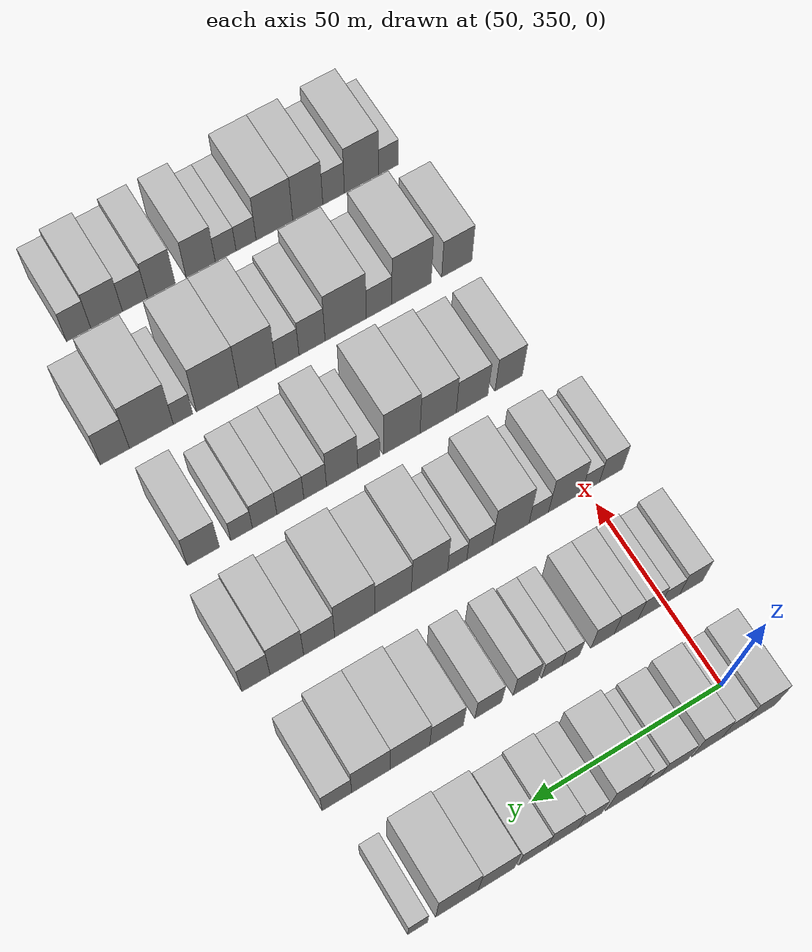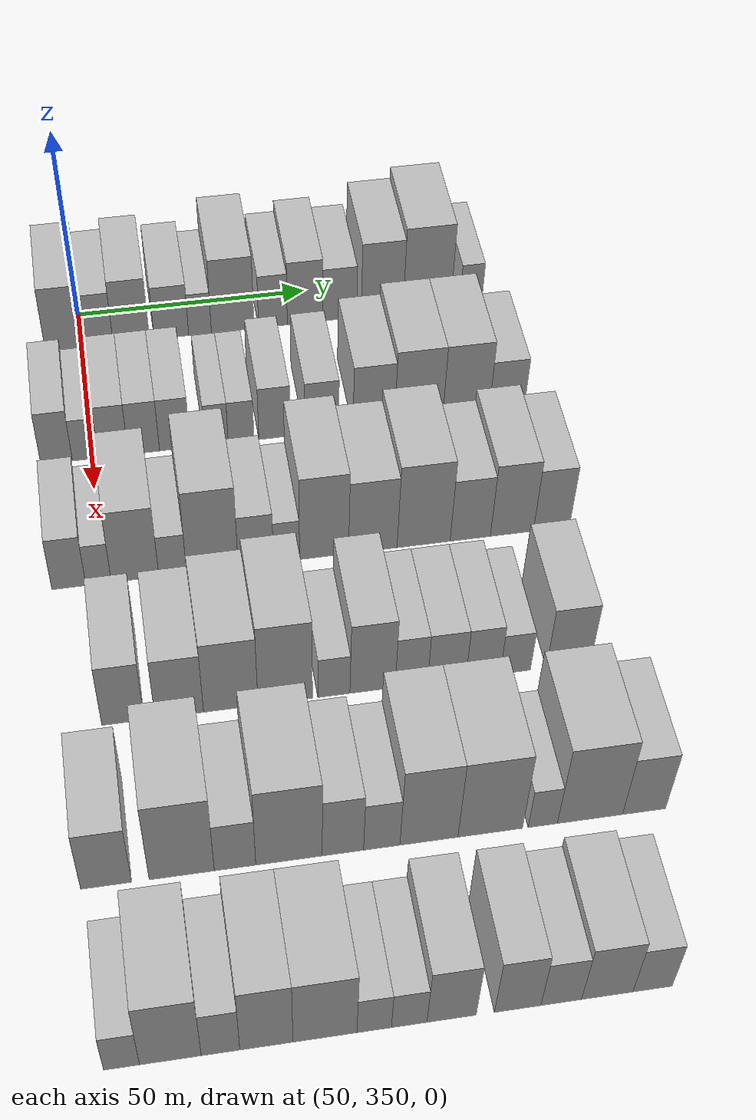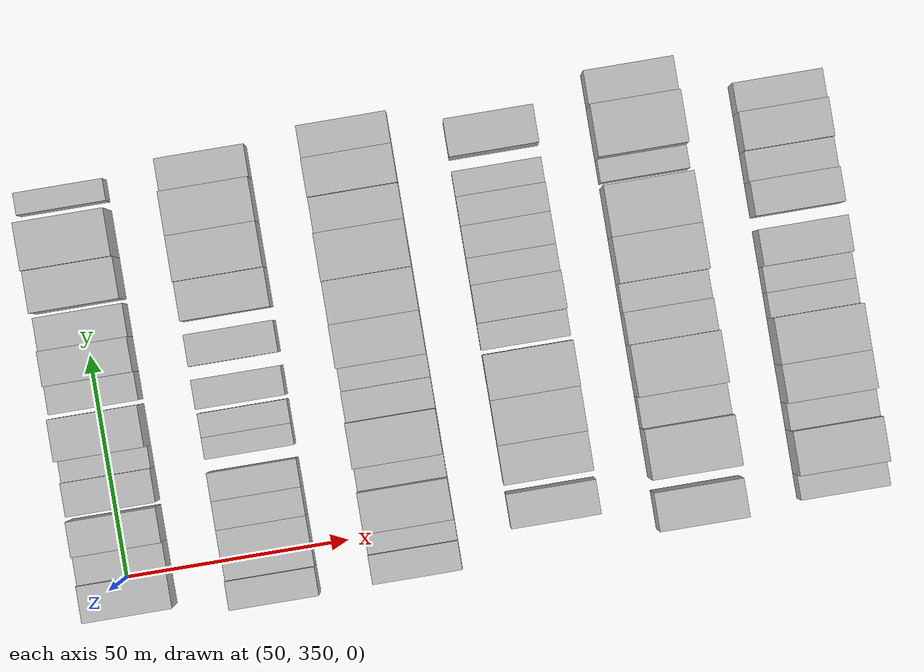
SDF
<sdf version="1.6">
 <world name="default">
  <model name="building_90">
   <static>1</static>
   <pose>50.0000 346.4483 0 0.000000 0.000000 0.000000</pose>
   <link name="link">
    <pose>0 0 9.00 0 0 0</pose>
    <collision name="collision"><geometry><box><size>20.0000 8.1792 18.0000</size></box></geometry></collision>
    <visual name="visual">
     <cast_shadows>0</cast_shadows>
     <geometry><box><size>20.0000 8.1792 18.0000</size></box></geometry>
     <material>
      <script>
       <uri>model://HANNAS_wall/materials/scripts</uri>
       <uri>model://HANNAS_wall/materials/textures</uri>
       <name>vrc/HANNAS_wall</name>
      </script>
     </material>
    </visual>
   </link>
  </model>
  <model name="building_91">
   <static>1</static>
   <pose>50.0000 353.7479 0 0.000000 0.000000 0.000000</pose>
   <link name="link">
    <pose>0 0 7.50 0 0 0</pose>
    <collision name="collision"><geometry><box><size>20.0000 6.4199 15.0000</size></box></geometry></collision>
    <visual name="visual">
     <cast_shadows>0</cast_shadows>
     <geometry><box><size>20.0000 6.4199 15.0000</size></box></geometry>
     <material>
      <script>
       <uri>model://HANNAS_wall/materials/scripts</uri>
       <uri>model://HANNAS_wall/materials/textures</uri>
       <name>vrc/HANNAS_wall</name>
      </script>
     </material>
    </visual>
   </link>
  </model>
  <model name="building_92">
   <static>1</static>
   <pose>50.0000 360.8791 0 0.000000 0.000000 0.000000</pose>
   <link name="link">
    <pose>0 0 9.00 0 0 0</pose>
    <collision name="collision"><geometry><box><size>20.0000 7.8426 18.0000</size></box></geometry></collision>
    <visual name="visual">
     <cast_shadows>0</cast_shadows>
     <geometry><box><size>20.0000 7.8426 18.0000</size></box></geometry>
     <material>
      <script>
       <uri>model://HANNAS_wall/materials/scripts</uri>
       <uri>model://HANNAS_wall/materials/textures</uri>
       <name>vrc/HANNAS_wall</name>
      </script>
     </material>
    </visual>
   </link>
  </model>
  <model name="building_93">
   <static>1</static>
   <pose>50.0000 369.5447 0 0.000000 0.000000 0.000000</pose>
   <link name="link">
    <pose>0 0 7.50 0 0 0</pose>
    <collision name="collision"><geometry><box><size>20.0000 7.4886 15.0000</size></box></geometry></collision>
    <visual name="visual">
     <cast_shadows>0</cast_shadows>
     <geometry><box><size>20.0000 7.4886 15.0000</size></box></geometry>
     <material>
      <script>
       <uri>model://HANNAS_wall/materials/scripts</uri>
       <uri>model://HANNAS_wall/materials/textures</uri>
       <name>vrc/HANNAS_wall</name>
      </script>
     </material>
    </visual>
   </link>
  </model>
  <model name="building_94">
   <static>1</static>
   <pose>50.0000 375.7590 0 0.000000 0.000000 0.000000</pose>
   <link name="link">
    <pose>0 0 6.00 0 0 0</pose>
    <collision name="collision"><geometry><box><size>20.0000 4.9399 12.0000</size></box></geometry></collision>
    <visual name="visual">
     <cast_shadows>0</cast_shadows>
     <geometry><box><size>20.0000 4.9399 12.0000</size></box></geometry>
     <material>
      <script>
       <uri>model://HANNAS_wall/materials/scripts</uri>
       <uri>model://HANNAS_wall/materials/textures</uri>
       <name>vrc/HANNAS_wall</name>
      </script>
     </material>
    </visual>
   </link>
  </model>
  <model name="building_95">
   <static>1</static>
   <pose>50.0000 382.8818 0 0.000000 0.000000 0.000000</pose>
   <link name="link">
    <pose>0 0 10.50 0 0 0</pose>
    <collision name="collision"><geometry><box><size>20.0000 9.3056 21.0000</size></box></geometry></collision>
    <visual name="visual">
     <cast_shadows>0</cast_shadows>
     <geometry><box><size>20.0000 9.3056 21.0000</size></box></geometry>
     <material>
      <script>
       <uri>model://HANNAS_wall/materials/scripts</uri>
       <uri>model://HANNAS_wall/materials/textures</uri>
       <name>vrc/HANNAS_wall</name>
      </script>
     </material>
    </visual>
   </link>
  </model>
  <model name="building_96">
   <static>1</static>
   <pose>50.0000 391.6769 0 0.000000 0.000000 0.000000</pose>
   <link name="link">
    <pose>0 0 7.50 0 0 0</pose>
    <collision name="collision"><geometry><box><size>20.0000 6.2844 15.0000</size></box></geometry></collision>
    <visual name="visual">
     <cast_shadows>0</cast_shadows>
     <geometry><box><size>20.0000 6.2844 15.0000</size></box></geometry>
     <material>
      <script>
       <uri>model://HANNAS_wall/materials/scripts</uri>
       <uri>model://HANNAS_wall/materials/textures</uri>
       <name>vrc/HANNAS_wall</name>
      </script>
     </material>
    </visual>
   </link>
  </model>
  <model name="building_97">
   <static>1</static>
   <pose>50.0000 398.7208 0 0.000000 0.000000 0.000000</pose>
   <link name="link">
    <pose>0 0 9.00 0 0 0</pose>
    <collision name="collision"><geometry><box><size>20.0000 7.8034 18.0000</size></box></geometry></collision>
    <visual name="visual">
     <cast_shadows>0</cast_shadows>
     <geometry><box><size>20.0000 7.8034 18.0000</size></box></geometry>
     <material>
      <script>
       <uri>model://HANNAS_wall/materials/scripts</uri>
       <uri>model://HANNAS_wall/materials/textures</uri>
       <name>vrc/HANNAS_wall</name>
      </script>
     </material>
    </visual>
   </link>
  </model>
  <model name="building_98">
   <static>1</static>
   <pose>50.0000 406.3386 0 0.000000 0.000000 0.000000</pose>
   <link name="link">
    <pose>0 0 7.50 0 0 0</pose>
    <collision name="collision"><geometry><box><size>20.0000 7.4322 15.0000</size></box></geometry></collision>
    <visual name="visual">
     <cast_shadows>0</cast_shadows>
     <geometry><box><size>20.0000 7.4322 15.0000</size></box></geometry>
     <material>
      <script>
       <uri>model://HANNAS_wall/materials/scripts</uri>
       <uri>model://HANNAS_wall/materials/textures</uri>
       <name>vrc/HANNAS_wall</name>
      </script>
     </material>
    </visual>
   </link>
  </model>
  <model name="building_99">
   <static>1</static>
   <pose>50.0000 415.7188 0 0.000000 0.000000 0.000000</pose>
   <link name="link">
    <pose>0 0 10.50 0 0 0</pose>
    <collision name="collision"><geometry><box><size>20.0000 9.3282 21.0000</size></box></geometry></collision>
    <visual name="visual">
     <cast_shadows>0</cast_shadows>
     <geometry><box><size>20.0000 9.3282 21.0000</size></box></geometry>
     <material>
      <script>
       <uri>model://HANNAS_wall/materials/scripts</uri>
       <uri>model://HANNAS_wall/materials/textures</uri>
       <name>vrc/HANNAS_wall</name>
      </script>
     </material>
    </visual>
   </link>
  </model>
  <model name="building_100">
   <static>1</static>
   <pose>50.0000 425.6971 0 0.000000 0.000000 0.000000</pose>
   <link name="link">
    <pose>0 0 12.00 0 0 0</pose>
    <collision name="collision"><geometry><box><size>20.0000 10.6284 24.0000</size></box></geometry></collision>
    <visual name="visual">
     <cast_shadows>0</cast_shadows>
     <geometry><box><size>20.0000 10.6284 24.0000</size></box></geometry>
     <material>
      <script>
       <uri>model://HANNAS_wall/materials/scripts</uri>
       <uri>model://HANNAS_wall/materials/textures</uri>
       <name>vrc/HANNAS_wall</name>
      </script>
     </material>
    </visual>
   </link>
  </model>
  <model name="building_101">
   <static>1</static>
   <pose>50.0000 435.4824 0 0.000000 0.000000 0.000000</pose>
   <link name="link">
    <pose>0 0 6.00 0 0 0</pose>
    <collision name="collision"><geometry><box><size>20.0000 4.9421 12.0000</size></box></geometry></collision>
    <visual name="visual">
     <cast_shadows>0</cast_shadows>
     <geometry><box><size>20.0000 4.9421 12.0000</size></box></geometry>
     <material>
      <script>
       <uri>model://HANNAS_wall/materials/scripts</uri>
       <uri>model://HANNAS_wall/materials/textures</uri>
       <name>vrc/HANNAS_wall</name>
      </script>
     </material>
    </visual>
   </link>
  </model>
  <model name="building_212">
   <static>1</static>
   <pose>82.0000 342.8796 0 0.000000 0.000000 0.000000</pose>
   <link name="link">
    <pose>0 0 7.50 0 0 0</pose>
    <collision name="collision"><geometry><box><size>20.0000 6.4121 15.0000</size></box></geometry></collision>
    <visual name="visual">
     <cast_shadows>0</cast_shadows>
     <geometry><box><size>20.0000 6.4121 15.0000</size></box></geometry>
     <material>
      <script>
       <uri>model://HANNAS_wall/materials/scripts</uri>
       <uri>model://HANNAS_wall/materials/textures</uri>
       <name>vrc/HANNAS_wall</name>
      </script>
     </material>
    </visual>
   </link>
  </model>
  <model name="building_213">
   <static>1</static>
   <pose>82.0000 348.7287 0 0.000000 0.000000 0.000000</pose>
   <link name="link">
    <pose>0 0 6.00 0 0 0</pose>
    <collision name="collision"><geometry><box><size>20.0000 5.2860 12.0000</size></box></geometry></collision>
    <visual name="visual">
     <cast_shadows>0</cast_shadows>
     <geometry><box><size>20.0000 5.2860 12.0000</size></box></geometry>
     <material>
      <script>
       <uri>model://HANNAS_wall/materials/scripts</uri>
       <uri>model://HANNAS_wall/materials/textures</uri>
       <name>vrc/HANNAS_wall</name>
      </script>
     </material>
    </visual>
   </link>
  </model>
  <model name="building_214">
   <static>1</static>
   <pose>82.0000 354.4255 0 0.000000 0.000000 0.000000</pose>
   <link name="link">
    <pose>0 0 7.50 0 0 0</pose>
    <collision name="collision"><geometry><box><size>20.0000 6.1077 15.0000</size></box></geometry></collision>
    <visual name="visual">
     <cast_shadows>0</cast_shadows>
     <geometry><box><size>20.0000 6.1077 15.0000</size></box></geometry>
     <material>
      <script>
       <uri>model://HANNAS_wall/materials/scripts</uri>
       <uri>model://HANNAS_wall/materials/textures</uri>
       <name>vrc/HANNAS_wall</name>
      </script>
     </material>
    </visual>
   </link>
  </model>
  <model name="building_215">
   <static>1</static>
   <pose>82.0000 360.6840 0 0.000000 0.000000 0.000000</pose>
   <link name="link">
    <pose>0 0 7.50 0 0 0</pose>
    <collision name="collision"><geometry><box><size>20.0000 6.4093 15.0000</size></box></geometry></collision>
    <visual name="visual">
     <cast_shadows>0</cast_shadows>
     <geometry><box><size>20.0000 6.4093 15.0000</size></box></geometry>
     <material>
      <script>
       <uri>model://HANNAS_wall/materials/scripts</uri>
       <uri>model://HANNAS_wall/materials/textures</uri>
       <name>vrc/HANNAS_wall</name>
      </script>
     </material>
    </visual>
   </link>
  </model>
  <model name="building_216">
   <static>1</static>
   <pose>82.0000 367.0318 0 0.000000 0.000000 0.000000</pose>
   <link name="link">
    <pose>0 0 7.50 0 0 0</pose>
    <collision name="collision"><geometry><box><size>20.0000 6.2862 15.0000</size></box></geometry></collision>
    <visual name="visual">
     <cast_shadows>0</cast_shadows>
     <geometry><box><size>20.0000 6.2862 15.0000</size></box></geometry>
     <material>
      <script>
       <uri>model://HANNAS_wall/materials/scripts</uri>
       <uri>model://HANNAS_wall/materials/textures</uri>
       <name>vrc/HANNAS_wall</name>
      </script>
     </material>
    </visual>
   </link>
  </model>
  <model name="building_217">
   <static>1</static>
   <pose>82.0000 375.5929 0 0.000000 0.000000 0.000000</pose>
   <link name="link">
    <pose>0 0 6.00 0 0 0</pose>
    <collision name="collision"><geometry><box><size>20.0000 4.8361 12.0000</size></box></geometry></collision>
    <visual name="visual">
     <cast_shadows>0</cast_shadows>
     <geometry><box><size>20.0000 4.8361 12.0000</size></box></geometry>
     <material>
      <script>
       <uri>model://HANNAS_wall/materials/scripts</uri>
       <uri>model://HANNAS_wall/materials/textures</uri>
       <name>vrc/HANNAS_wall</name>
      </script>
     </material>
    </visual>
   </link>
  </model>
  <model name="building_218">
   <static>1</static>
   <pose>82.0000 380.6819 0 0.000000 0.000000 0.000000</pose>
   <link name="link">
    <pose>0 0 6.00 0 0 0</pose>
    <collision name="collision"><geometry><box><size>20.0000 5.3418 12.0000</size></box></geometry></collision>
    <visual name="visual">
     <cast_shadows>0</cast_shadows>
     <geometry><box><size>20.0000 5.3418 12.0000</size></box></geometry>
     <material>
      <script>
       <uri>model://HANNAS_wall/materials/scripts</uri>
       <uri>model://HANNAS_wall/materials/textures</uri>
       <name>vrc/HANNAS_wall</name>
      </script>
     </material>
    </visual>
   </link>
  </model>
  <model name="building_219">
   <static>1</static>
   <pose>82.0000 387.6200 0 0.000000 0.000000 0.000000</pose>
   <link name="link">
    <pose>0 0 7.50 0 0 0</pose>
    <collision name="collision"><geometry><box><size>20.0000 6.5345 15.0000</size></box></geometry></collision>
    <visual name="visual">
     <cast_shadows>0</cast_shadows>
     <geometry><box><size>20.0000 6.5345 15.0000</size></box></geometry>
     <material>
      <script>
       <uri>model://HANNAS_wall/materials/scripts</uri>
       <uri>model://HANNAS_wall/materials/textures</uri>
       <name>vrc/HANNAS_wall</name>
      </script>
     </material>
    </visual>
   </link>
  </model>
  <model name="building_220">
   <static>1</static>
   <pose>82.0000 397.4196 0 0.000000 0.000000 0.000000</pose>
   <link name="link">
    <pose>0 0 7.50 0 0 0</pose>
    <collision name="collision"><geometry><box><size>20.0000 7.0648 15.0000</size></box></geometry></collision>
    <visual name="visual">
     <cast_shadows>0</cast_shadows>
     <geometry><box><size>20.0000 7.0648 15.0000</size></box></geometry>
     <material>
      <script>
       <uri>model://HANNAS_wall/materials/scripts</uri>
       <uri>model://HANNAS_wall/materials/textures</uri>
       <name>vrc/HANNAS_wall</name>
      </script>
     </material>
    </visual>
   </link>
  </model>
  <model name="building_221">
   <static>1</static>
   <pose>82.0000 408.3158 0 0.000000 0.000000 0.000000</pose>
   <link name="link">
    <pose>0 0 9.00 0 0 0</pose>
    <collision name="collision"><geometry><box><size>20.0000 8.7275 18.0000</size></box></geometry></collision>
    <visual name="visual">
     <cast_shadows>0</cast_shadows>
     <geometry><box><size>20.0000 8.7275 18.0000</size></box></geometry>
     <material>
      <script>
       <uri>model://HANNAS_wall/materials/scripts</uri>
       <uri>model://HANNAS_wall/materials/textures</uri>
       <name>vrc/HANNAS_wall</name>
      </script>
     </material>
    </visual>
   </link>
  </model>
  <model name="building_222">
   <static>1</static>
   <pose>82.0000 417.7610 0 0.000000 0.000000 0.000000</pose>
   <link name="link">
    <pose>0 0 10.50 0 0 0</pose>
    <collision name="collision"><geometry><box><size>20.0000 10.1630 21.0000</size></box></geometry></collision>
    <visual name="visual">
     <cast_shadows>0</cast_shadows>
     <geometry><box><size>20.0000 10.1630 21.0000</size></box></geometry>
     <material>
      <script>
       <uri>model://HANNAS_wall/materials/scripts</uri>
       <uri>model://HANNAS_wall/materials/textures</uri>
       <name>vrc/HANNAS_wall</name>
      </script>
     </material>
    </visual>
   </link>
  </model>
  <model name="building_223">
   <static>1</static>
   <pose>82.0000 427.7503 0 0.000000 0.000000 0.000000</pose>
   <link name="link">
    <pose>0 0 10.50 0 0 0</pose>
    <collision name="collision"><geometry><box><size>20.0000 9.8155 21.0000</size></box></geometry></collision>
    <visual name="visual">
     <cast_shadows>0</cast_shadows>
     <geometry><box><size>20.0000 9.8155 21.0000</size></box></geometry>
     <material>
      <script>
       <uri>model://HANNAS_wall/materials/scripts</uri>
       <uri>model://HANNAS_wall/materials/textures</uri>
       <name>vrc/HANNAS_wall</name>
      </script>
     </material>
    </visual>
   </link>
  </model>
  <model name="building_224">
   <static>1</static>
   <pose>82.0000 436.4054 0 0.000000 0.000000 0.000000</pose>
   <link name="link">
    <pose>0 0 7.50 0 0 0</pose>
    <collision name="collision"><geometry><box><size>20.0000 7.4946 15.0000</size></box></geometry></collision>
    <visual name="visual">
     <cast_shadows>0</cast_shadows>
     <geometry><box><size>20.0000 7.4946 15.0000</size></box></geometry>
     <material>
      <script>
       <uri>model://HANNAS_wall/materials/scripts</uri>
       <uri>model://HANNAS_wall/materials/textures</uri>
       <name>vrc/HANNAS_wall</name>
      </script>
     </material>
    </visual>
   </link>
  </model>
  <model name="building_332">
   <static>1</static>
   <pose>114.0000 343.3228 0 0.000000 0.000000 0.000000</pose>
   <link name="link">
    <pose>0 0 7.50 0 0 0</pose>
    <collision name="collision"><geometry><box><size>20.0000 6.4999 15.0000</size></box></geometry></collision>
    <visual name="visual">
     <cast_shadows>0</cast_shadows>
     <geometry><box><size>20.0000 6.4999 15.0000</size></box></geometry>
     <material>
      <script>
       <uri>model://HANNAS_wall/materials/scripts</uri>
       <uri>model://HANNAS_wall/materials/textures</uri>
       <name>vrc/HANNAS_wall</name>
      </script>
     </material>
    </visual>
   </link>
  </model>
  <model name="building_333">
   <static>1</static>
   <pose>114.0000 349.0284 0 0.000000 0.000000 0.000000</pose>
   <link name="link">
    <pose>0 0 6.00 0 0 0</pose>
    <collision name="collision"><geometry><box><size>20.0000 4.9114 12.0000</size></box></geometry></collision>
    <visual name="visual">
     <cast_shadows>0</cast_shadows>
     <geometry><box><size>20.0000 4.9114 12.0000</size></box></geometry>
     <material>
      <script>
       <uri>model://HANNAS_wall/materials/scripts</uri>
       <uri>model://HANNAS_wall/materials/textures</uri>
       <name>vrc/HANNAS_wall</name>
      </script>
     </material>
    </visual>
   </link>
  </model>
  <model name="building_334">
   <static>1</static>
   <pose>114.0000 356.0740 0 0.000000 0.000000 0.000000</pose>
   <link name="link">
    <pose>0 0 10.50 0 0 0</pose>
    <collision name="collision"><geometry><box><size>20.0000 9.1797 21.0000</size></box></geometry></collision>
    <visual name="visual">
     <cast_shadows>0</cast_shadows>
     <geometry><box><size>20.0000 9.1797 21.0000</size></box></geometry>
     <material>
      <script>
       <uri>model://HANNAS_wall/materials/scripts</uri>
       <uri>model://HANNAS_wall/materials/textures</uri>
       <name>vrc/HANNAS_wall</name>
      </script>
     </material>
    </visual>
   </link>
  </model>
  <model name="building_335">
   <static>1</static>
   <pose>114.0000 363.3535 0 0.000000 0.000000 0.000000</pose>
   <link name="link">
    <pose>0 0 6.00 0 0 0</pose>
    <collision name="collision"><geometry><box><size>20.0000 5.3793 12.0000</size></box></geometry></collision>
    <visual name="visual">
     <cast_shadows>0</cast_shadows>
     <geometry><box><size>20.0000 5.3793 12.0000</size></box></geometry>
     <material>
      <script>
       <uri>model://HANNAS_wall/materials/scripts</uri>
       <uri>model://HANNAS_wall/materials/textures</uri>
       <name>vrc/HANNAS_wall</name>
      </script>
     </material>
    </visual>
   </link>
  </model>
  <model name="building_336">
   <static>1</static>
   <pose>114.0000 371.0603 0 0.000000 0.000000 0.000000</pose>
   <link name="link">
    <pose>0 0 12.00 0 0 0</pose>
    <collision name="collision"><geometry><box><size>20.0000 10.0343 24.0000</size></box></geometry></collision>
    <visual name="visual">
     <cast_shadows>0</cast_shadows>
     <geometry><box><size>20.0000 10.0343 24.0000</size></box></geometry>
     <material>
      <script>
       <uri>model://HANNAS_wall/materials/scripts</uri>
       <uri>model://HANNAS_wall/materials/textures</uri>
       <name>vrc/HANNAS_wall</name>
      </script>
     </material>
    </visual>
   </link>
  </model>
  <model name="building_337">
   <static>1</static>
   <pose>114.0000 379.5212 0 0.000000 0.000000 0.000000</pose>
   <link name="link">
    <pose>0 0 7.50 0 0 0</pose>
    <collision name="collision"><geometry><box><size>20.0000 6.8875 15.0000</size></box></geometry></collision>
    <visual name="visual">
     <cast_shadows>0</cast_shadows>
     <geometry><box><size>20.0000 6.8875 15.0000</size></box></geometry>
     <material>
      <script>
       <uri>model://HANNAS_wall/materials/scripts</uri>
       <uri>model://HANNAS_wall/materials/textures</uri>
       <name>vrc/HANNAS_wall</name>
      </script>
     </material>
    </visual>
   </link>
  </model>
  <model name="building_338">
   <static>1</static>
   <pose>114.0000 385.5385 0 0.000000 0.000000 0.000000</pose>
   <link name="link">
    <pose>0 0 6.00 0 0 0</pose>
    <collision name="collision"><geometry><box><size>20.0000 5.1470 12.0000</size></box></geometry></collision>
    <visual name="visual">
     <cast_shadows>0</cast_shadows>
     <geometry><box><size>20.0000 5.1470 12.0000</size></box></geometry>
     <material>
      <script>
       <uri>model://HANNAS_wall/materials/scripts</uri>
       <uri>model://HANNAS_wall/materials/textures</uri>
       <name>vrc/HANNAS_wall</name>
      </script>
     </material>
    </visual>
   </link>
  </model>
  <model name="building_339">
   <static>1</static>
   <pose>114.0000 392.9374 0 0.000000 0.000000 0.000000</pose>
   <link name="link">
    <pose>0 0 12.00 0 0 0</pose>
    <collision name="collision"><geometry><box><size>20.0000 9.6509 24.0000</size></box></geometry></collision>
    <visual name="visual">
     <cast_shadows>0</cast_shadows>
     <geometry><box><size>20.0000 9.6509 24.0000</size></box></geometry>
     <material>
      <script>
       <uri>model://HANNAS_wall/materials/scripts</uri>
       <uri>model://HANNAS_wall/materials/textures</uri>
       <name>vrc/HANNAS_wall</name>
      </script>
     </material>
    </visual>
   </link>
  </model>
  <model name="building_340">
   <static>1</static>
   <pose>114.0000 402.5705 0 0.000000 0.000000 0.000000</pose>
   <link name="link">
    <pose>0 0 10.50 0 0 0</pose>
    <collision name="collision"><geometry><box><size>20.0000 9.6153 21.0000</size></box></geometry></collision>
    <visual name="visual">
     <cast_shadows>0</cast_shadows>
     <geometry><box><size>20.0000 9.6153 21.0000</size></box></geometry>
     <material>
      <script>
       <uri>model://HANNAS_wall/materials/scripts</uri>
       <uri>model://HANNAS_wall/materials/textures</uri>
       <name>vrc/HANNAS_wall</name>
      </script>
     </material>
    </visual>
   </link>
  </model>
  <model name="building_341">
   <static>1</static>
   <pose>114.0000 412.6660 0 0.000000 0.000000 0.000000</pose>
   <link name="link">
    <pose>0 0 12.00 0 0 0</pose>
    <collision name="collision"><geometry><box><size>20.0000 10.5757 24.0000</size></box></geometry></collision>
    <visual name="visual">
     <cast_shadows>0</cast_shadows>
     <geometry><box><size>20.0000 10.5757 24.0000</size></box></geometry>
     <material>
      <script>
       <uri>model://HANNAS_wall/materials/scripts</uri>
       <uri>model://HANNAS_wall/materials/textures</uri>
       <name>vrc/HANNAS_wall</name>
      </script>
     </material>
    </visual>
   </link>
  </model>
  <model name="building_342">
   <static>1</static>
   <pose>114.0000 421.9814 0 0.000000 0.000000 0.000000</pose>
   <link name="link">
    <pose>0 0 9.00 0 0 0</pose>
    <collision name="collision"><geometry><box><size>20.0000 8.0551 18.0000</size></box></geometry></collision>
    <visual name="visual">
     <cast_shadows>0</cast_shadows>
     <geometry><box><size>20.0000 8.0551 18.0000</size></box></geometry>
     <material>
      <script>
       <uri>model://HANNAS_wall/materials/scripts</uri>
       <uri>model://HANNAS_wall/materials/textures</uri>
       <name>vrc/HANNAS_wall</name>
      </script>
     </material>
    </visual>
   </link>
  </model>
  <model name="building_343">
   <static>1</static>
   <pose>114.0000 430.3427 0 0.000000 0.000000 0.000000</pose>
   <link name="link">
    <pose>0 0 10.50 0 0 0</pose>
    <collision name="collision"><geometry><box><size>20.0000 8.6676 21.0000</size></box></geometry></collision>
    <visual name="visual">
     <cast_shadows>0</cast_shadows>
     <geometry><box><size>20.0000 8.6676 21.0000</size></box></geometry>
     <material>
      <script>
       <uri>model://HANNAS_wall/materials/scripts</uri>
       <uri>model://HANNAS_wall/materials/textures</uri>
       <name>vrc/HANNAS_wall</name>
      </script>
     </material>
    </visual>
   </link>
  </model>
  <model name="building_344">
   <static>1</static>
   <pose>114.0000 438.3232 0 0.000000 0.000000 0.000000</pose>
   <link name="link">
    <pose>0 0 9.00 0 0 0</pose>
    <collision name="collision"><geometry><box><size>20.0000 7.2933 18.0000</size></box></geometry></collision>
    <visual name="visual">
     <cast_shadows>0</cast_shadows>
     <geometry><box><size>20.0000 7.2933 18.0000</size></box></geometry>
     <material>
      <script>
       <uri>model://HANNAS_wall/materials/scripts</uri>
       <uri>model://HANNAS_wall/materials/textures</uri>
       <name>vrc/HANNAS_wall</name>
      </script>
     </material>
    </visual>
   </link>
  </model>
  <model name="building_444">
   <static>1</static>
   <pose>146.0000 351.0563 0 0.000000 0.000000 0.000000</pose>
   <link name="link">
    <pose>0 0 9.00 0 0 0</pose>
    <collision name="collision"><geometry><box><size>20.0000 7.6778 18.0000</size></box></geometry></collision>
    <visual name="visual">
     <cast_shadows>0</cast_shadows>
     <geometry><box><size>20.0000 7.6778 18.0000</size></box></geometry>
     <material>
      <script>
       <uri>model://HANNAS_wall/materials/scripts</uri>
       <uri>model://HANNAS_wall/materials/textures</uri>
       <name>vrc/HANNAS_wall</name>
      </script>
     </material>
    </visual>
   </link>
  </model>
  <model name="building_445">
   <static>1</static>
   <pose>146.0000 361.3134 0 0.000000 0.000000 0.000000</pose>
   <link name="link">
    <pose>0 0 9.00 0 0 0</pose>
    <collision name="collision"><geometry><box><size>20.0000 8.8363 18.0000</size></box></geometry></collision>
    <visual name="visual">
     <cast_shadows>0</cast_shadows>
     <geometry><box><size>20.0000 8.8363 18.0000</size></box></geometry>
     <material>
      <script>
       <uri>model://HANNAS_wall/materials/scripts</uri>
       <uri>model://HANNAS_wall/materials/textures</uri>
       <name>vrc/HANNAS_wall</name>
      </script>
     </material>
    </visual>
   </link>
  </model>
  <model name="building_446">
   <static>1</static>
   <pose>146.0000 370.7337 0 0.000000 0.000000 0.000000</pose>
   <link name="link">
    <pose>0 0 10.50 0 0 0</pose>
    <collision name="collision"><geometry><box><size>20.0000 10.0044 21.0000</size></box></geometry></collision>
    <visual name="visual">
     <cast_shadows>0</cast_shadows>
     <geometry><box><size>20.0000 10.0044 21.0000</size></box></geometry>
     <material>
      <script>
       <uri>model://HANNAS_wall/materials/scripts</uri>
       <uri>model://HANNAS_wall/materials/textures</uri>
       <name>vrc/HANNAS_wall</name>
      </script>
     </material>
    </visual>
   </link>
  </model>
  <model name="building_447">
   <static>1</static>
   <pose>146.0000 380.7543 0 0.000000 0.000000 0.000000</pose>
   <link name="link">
    <pose>0 0 12.00 0 0 0</pose>
    <collision name="collision"><geometry><box><size>20.0000 10.0367 24.0000</size></box></geometry></collision>
    <visual name="visual">
     <cast_shadows>0</cast_shadows>
     <geometry><box><size>20.0000 10.0367 24.0000</size></box></geometry>
     <material>
      <script>
       <uri>model://HANNAS_wall/materials/scripts</uri>
       <uri>model://HANNAS_wall/materials/textures</uri>
       <name>vrc/HANNAS_wall</name>
      </script>
     </material>
    </visual>
   </link>
  </model>
  <model name="building_448">
   <static>1</static>
   <pose>146.0000 389.7501 0 0.000000 0.000000 0.000000</pose>
   <link name="link">
    <pose>0 0 6.00 0 0 0</pose>
    <collision name="collision"><geometry><box><size>20.0000 5.9547 12.0000</size></box></geometry></collision>
    <visual name="visual">
     <cast_shadows>0</cast_shadows>
     <geometry><box><size>20.0000 5.9547 12.0000</size></box></geometry>
     <material>
      <script>
       <uri>model://HANNAS_wall/materials/scripts</uri>
       <uri>model://HANNAS_wall/materials/textures</uri>
       <name>vrc/HANNAS_wall</name>
      </script>
     </material>
    </visual>
   </link>
  </model>
  <model name="building_449">
   <static>1</static>
   <pose>146.0000 396.9469 0 0.000000 0.000000 0.000000</pose>
   <link name="link">
    <pose>0 0 10.50 0 0 0</pose>
    <collision name="collision"><geometry><box><size>20.0000 8.4390 21.0000</size></box></geometry></collision>
    <visual name="visual">
     <cast_shadows>0</cast_shadows>
     <geometry><box><size>20.0000 8.4390 21.0000</size></box></geometry>
     <material>
      <script>
       <uri>model://HANNAS_wall/materials/scripts</uri>
       <uri>model://HANNAS_wall/materials/textures</uri>
       <name>vrc/HANNAS_wall</name>
      </script>
     </material>
    </visual>
   </link>
  </model>
  <model name="building_450">
   <static>1</static>
   <pose>146.0000 404.1959 0 0.000000 0.000000 0.000000</pose>
   <link name="link">
    <pose>0 0 7.50 0 0 0</pose>
    <collision name="collision"><geometry><box><size>20.0000 6.0590 15.0000</size></box></geometry></collision>
    <visual name="visual">
     <cast_shadows>0</cast_shadows>
     <geometry><box><size>20.0000 6.0590 15.0000</size></box></geometry>
     <material>
      <script>
       <uri>model://HANNAS_wall/materials/scripts</uri>
       <uri>model://HANNAS_wall/materials/textures</uri>
       <name>vrc/HANNAS_wall</name>
      </script>
     </material>
    </visual>
   </link>
  </model>
  <model name="building_451">
   <static>1</static>
   <pose>146.0000 410.8268 0 0.000000 0.000000 0.000000</pose>
   <link name="link">
    <pose>0 0 7.50 0 0 0</pose>
    <collision name="collision"><geometry><box><size>20.0000 7.2028 15.0000</size></box></geometry></collision>
    <visual name="visual">
     <cast_shadows>0</cast_shadows>
     <geometry><box><size>20.0000 7.2028 15.0000</size></box></geometry>
     <material>
      <script>
       <uri>model://HANNAS_wall/materials/scripts</uri>
       <uri>model://HANNAS_wall/materials/textures</uri>
       <name>vrc/HANNAS_wall</name>
      </script>
     </material>
    </visual>
   </link>
  </model>
  <model name="building_452">
   <static>1</static>
   <pose>146.0000 417.6754 0 0.000000 0.000000 0.000000</pose>
   <link name="link">
    <pose>0 0 7.50 0 0 0</pose>
    <collision name="collision"><geometry><box><size>20.0000 6.4944 15.0000</size></box></geometry></collision>
    <visual name="visual">
     <cast_shadows>0</cast_shadows>
     <geometry><box><size>20.0000 6.4944 15.0000</size></box></geometry>
     <material>
      <script>
       <uri>model://HANNAS_wall/materials/scripts</uri>
       <uri>model://HANNAS_wall/materials/textures</uri>
       <name>vrc/HANNAS_wall</name>
      </script>
     </material>
    </visual>
   </link>
  </model>
  <model name="building_453">
   <static>1</static>
   <pose>146.0000 423.7832 0 0.000000 0.000000 0.000000</pose>
   <link name="link">
    <pose>0 0 6.00 0 0 0</pose>
    <collision name="collision"><geometry><box><size>20.0000 5.7212 12.0000</size></box></geometry></collision>
    <visual name="visual">
     <cast_shadows>0</cast_shadows>
     <geometry><box><size>20.0000 5.7212 12.0000</size></box></geometry>
     <material>
      <script>
       <uri>model://HANNAS_wall/materials/scripts</uri>
       <uri>model://HANNAS_wall/materials/textures</uri>
       <name>vrc/HANNAS_wall</name>
      </script>
     </material>
    </visual>
   </link>
  </model>
  <model name="building_454">
   <static>1</static>
   <pose>146.0000 433.8644 0 0.000000 0.000000 0.000000</pose>
   <link name="link">
    <pose>0 0 9.00 0 0 0</pose>
    <collision name="collision"><geometry><box><size>20.0000 8.4412 18.0000</size></box></geometry></collision>
    <visual name="visual">
     <cast_shadows>0</cast_shadows>
     <geometry><box><size>20.0000 8.4412 18.0000</size></box></geometry>
     <material>
      <script>
       <uri>model://HANNAS_wall/materials/scripts</uri>
       <uri>model://HANNAS_wall/materials/textures</uri>
       <name>vrc/HANNAS_wall</name>
      </script>
     </material>
    </visual>
   </link>
  </model>
  <model name="building_568">
   <static>1</static>
   <pose>178.0000 345.5124 0 0.000000 0.000000 0.000000</pose>
   <link name="link">
    <pose>0 0 9.00 0 0 0</pose>
    <collision name="collision"><geometry><box><size>20.0000 8.6474 18.0000</size></box></geometry></collision>
    <visual name="visual">
     <cast_shadows>0</cast_shadows>
     <geometry><box><size>20.0000 8.6474 18.0000</size></box></geometry>
     <material>
      <script>
       <uri>model://HANNAS_wall/materials/scripts</uri>
       <uri>model://HANNAS_wall/materials/textures</uri>
       <name>vrc/HANNAS_wall</name>
      </script>
     </material>
    </visual>
   </link>
  </model>
  <model name="building_569">
   <static>1</static>
   <pose>178.0000 358.4090 0 0.000000 0.000000 0.000000</pose>
   <link name="link">
    <pose>0 0 12.00 0 0 0</pose>
    <collision name="collision"><geometry><box><size>20.0000 11.1457 24.0000</size></box></geometry></collision>
    <visual name="visual">
     <cast_shadows>0</cast_shadows>
     <geometry><box><size>20.0000 11.1457 24.0000</size></box></geometry>
     <material>
      <script>
       <uri>model://HANNAS_wall/materials/scripts</uri>
       <uri>model://HANNAS_wall/materials/textures</uri>
       <name>vrc/HANNAS_wall</name>
      </script>
     </material>
    </visual>
   </link>
  </model>
  <model name="building_570">
   <static>1</static>
   <pose>178.0000 367.5529 0 0.000000 0.000000 0.000000</pose>
   <link name="link">
    <pose>0 0 7.50 0 0 0</pose>
    <collision name="collision"><geometry><box><size>20.0000 7.1421 15.0000</size></box></geometry></collision>
    <visual name="visual">
     <cast_shadows>0</cast_shadows>
     <geometry><box><size>20.0000 7.1421 15.0000</size></box></geometry>
     <material>
      <script>
       <uri>model://HANNAS_wall/materials/scripts</uri>
       <uri>model://HANNAS_wall/materials/textures</uri>
       <name>vrc/HANNAS_wall</name>
      </script>
     </material>
    </visual>
   </link>
  </model>
  <model name="building_571">
   <static>1</static>
   <pose>178.0000 376.8691 0 0.000000 0.000000 0.000000</pose>
   <link name="link">
    <pose>0 0 12.00 0 0 0</pose>
    <collision name="collision"><geometry><box><size>20.0000 11.4903 24.0000</size></box></geometry></collision>
    <visual name="visual">
     <cast_shadows>0</cast_shadows>
     <geometry><box><size>20.0000 11.4903 24.0000</size></box></geometry>
     <material>
      <script>
       <uri>model://HANNAS_wall/materials/scripts</uri>
       <uri>model://HANNAS_wall/materials/textures</uri>
       <name>vrc/HANNAS_wall</name>
      </script>
     </material>
    </visual>
   </link>
  </model>
  <model name="building_572">
   <static>1</static>
   <pose>178.0000 386.2160 0 0.000000 0.000000 0.000000</pose>
   <link name="link">
    <pose>0 0 9.00 0 0 0</pose>
    <collision name="collision"><geometry><box><size>20.0000 7.2035 18.0000</size></box></geometry></collision>
    <visual name="visual">
     <cast_shadows>0</cast_shadows>
     <geometry><box><size>20.0000 7.2035 18.0000</size></box></geometry>
     <material>
      <script>
       <uri>model://HANNAS_wall/materials/scripts</uri>
       <uri>model://HANNAS_wall/materials/textures</uri>
       <name>vrc/HANNAS_wall</name>
      </script>
     </material>
    </visual>
   </link>
  </model>
  <model name="building_573">
   <static>1</static>
   <pose>178.0000 392.9893 0 0.000000 0.000000 0.000000</pose>
   <link name="link">
    <pose>0 0 7.50 0 0 0</pose>
    <collision name="collision"><geometry><box><size>20.0000 6.3430 15.0000</size></box></geometry></collision>
    <visual name="visual">
     <cast_shadows>0</cast_shadows>
     <geometry><box><size>20.0000 6.3430 15.0000</size></box></geometry>
     <material>
      <script>
       <uri>model://HANNAS_wall/materials/scripts</uri>
       <uri>model://HANNAS_wall/materials/textures</uri>
       <name>vrc/HANNAS_wall</name>
      </script>
     </material>
    </visual>
   </link>
  </model>
  <model name="building_574">
   <static>1</static>
   <pose>178.0000 401.2674 0 0.000000 0.000000 0.000000</pose>
   <link name="link">
    <pose>0 0 12.00 0 0 0</pose>
    <collision name="collision"><geometry><box><size>20.0000 10.2133 24.0000</size></box></geometry></collision>
    <visual name="visual">
     <cast_shadows>0</cast_shadows>
     <geometry><box><size>20.0000 10.2133 24.0000</size></box></geometry>
     <material>
      <script>
       <uri>model://HANNAS_wall/materials/scripts</uri>
       <uri>model://HANNAS_wall/materials/textures</uri>
       <name>vrc/HANNAS_wall</name>
      </script>
     </material>
    </visual>
   </link>
  </model>
  <model name="building_575">
   <static>1</static>
   <pose>178.0000 412.0924 0 0.000000 0.000000 0.000000</pose>
   <link name="link">
    <pose>0 0 12.00 0 0 0</pose>
    <collision name="collision"><geometry><box><size>20.0000 11.4366 24.0000</size></box></geometry></collision>
    <visual name="visual">
     <cast_shadows>0</cast_shadows>
     <geometry><box><size>20.0000 11.4366 24.0000</size></box></geometry>
     <material>
      <script>
       <uri>model://HANNAS_wall/materials/scripts</uri>
       <uri>model://HANNAS_wall/materials/textures</uri>
       <name>vrc/HANNAS_wall</name>
      </script>
     </material>
    </visual>
   </link>
  </model>
  <model name="building_576">
   <static>1</static>
   <pose>178.0000 421.4144 0 0.000000 0.000000 0.000000</pose>
   <link name="link">
    <pose>0 0 6.00 0 0 0</pose>
    <collision name="collision"><geometry><box><size>20.0000 5.2073 12.0000</size></box></geometry></collision>
    <visual name="visual">
     <cast_shadows>0</cast_shadows>
     <geometry><box><size>20.0000 5.2073 12.0000</size></box></geometry>
     <material>
      <script>
       <uri>model://HANNAS_wall/materials/scripts</uri>
       <uri>model://HANNAS_wall/materials/textures</uri>
       <name>vrc/HANNAS_wall</name>
      </script>
     </material>
    </visual>
   </link>
  </model>
  <model name="building_577">
   <static>1</static>
   <pose>178.0000 429.8529 0 0.000000 0.000000 0.000000</pose>
   <link name="link">
    <pose>0 0 12.00 0 0 0</pose>
    <collision name="collision"><geometry><box><size>20.0000 11.6696 24.0000</size></box></geometry></collision>
    <visual name="visual">
     <cast_shadows>0</cast_shadows>
     <geometry><box><size>20.0000 11.6696 24.0000</size></box></geometry>
     <material>
      <script>
       <uri>model://HANNAS_wall/materials/scripts</uri>
       <uri>model://HANNAS_wall/materials/textures</uri>
       <name>vrc/HANNAS_wall</name>
      </script>
     </material>
    </visual>
   </link>
  </model>
  <model name="building_578">
   <static>1</static>
   <pose>178.0000 439.5644 0 0.000000 0.000000 0.000000</pose>
   <link name="link">
    <pose>0 0 9.00 0 0 0</pose>
    <collision name="collision"><geometry><box><size>20.0000 7.7534 18.0000</size></box></geometry></collision>
    <visual name="visual">
     <cast_shadows>0</cast_shadows>
     <geometry><box><size>20.0000 7.7534 18.0000</size></box></geometry>
     <material>
      <script>
       <uri>model://HANNAS_wall/materials/scripts</uri>
       <uri>model://HANNAS_wall/materials/textures</uri>
       <name>vrc/HANNAS_wall</name>
      </script>
     </material>
    </visual>
   </link>
  </model>
  <model name="building_695">
   <static>1</static>
   <pose>210.0000 345.4804 0 0.000000 0.000000 0.000000</pose>
   <link name="link">
    <pose>0 0 6.00 0 0 0</pose>
    <collision name="collision"><geometry><box><size>20.0000 5.7027 12.0000</size></box></geometry></collision>
    <visual name="visual">
     <cast_shadows>0</cast_shadows>
     <geometry><box><size>20.0000 5.7027 12.0000</size></box></geometry>
     <material>
      <script>
       <uri>model://HANNAS_wall/materials/scripts</uri>
       <uri>model://HANNAS_wall/materials/textures</uri>
       <name>vrc/HANNAS_wall</name>
      </script>
     </material>
    </visual>
   </link>
  </model>
  <model name="building_696">
   <static>1</static>
   <pose>210.0000 353.2515 0 0.000000 0.000000 0.000000</pose>
   <link name="link">
    <pose>0 0 10.50 0 0 0</pose>
    <collision name="collision"><geometry><box><size>20.0000 9.8395 21.0000</size></box></geometry></collision>
    <visual name="visual">
     <cast_shadows>0</cast_shadows>
     <geometry><box><size>20.0000 9.8395 21.0000</size></box></geometry>
     <material>
      <script>
       <uri>model://HANNAS_wall/materials/scripts</uri>
       <uri>model://HANNAS_wall/materials/textures</uri>
       <name>vrc/HANNAS_wall</name>
      </script>
     </material>
    </visual>
   </link>
  </model>
  <model name="building_697">
   <static>1</static>
   <pose>210.0000 361.2641 0 0.000000 0.000000 0.000000</pose>
   <link name="link">
    <pose>0 0 7.50 0 0 0</pose>
    <collision name="collision"><geometry><box><size>20.0000 6.1856 15.0000</size></box></geometry></collision>
    <visual name="visual">
     <cast_shadows>0</cast_shadows>
     <geometry><box><size>20.0000 6.1856 15.0000</size></box></geometry>
     <material>
      <script>
       <uri>model://HANNAS_wall/materials/scripts</uri>
       <uri>model://HANNAS_wall/materials/textures</uri>
       <name>vrc/HANNAS_wall</name>
      </script>
     </material>
    </visual>
   </link>
  </model>
  <model name="building_698">
   <static>1</static>
   <pose>210.0000 368.6367 0 0.000000 0.000000 0.000000</pose>
   <link name="link">
    <pose>0 0 10.50 0 0 0</pose>
    <collision name="collision"><geometry><box><size>20.0000 8.5597 21.0000</size></box></geometry></collision>
    <visual name="visual">
     <cast_shadows>0</cast_shadows>
     <geometry><box><size>20.0000 8.5597 21.0000</size></box></geometry>
     <material>
      <script>
       <uri>model://HANNAS_wall/materials/scripts</uri>
       <uri>model://HANNAS_wall/materials/textures</uri>
       <name>vrc/HANNAS_wall</name>
      </script>
     </material>
    </visual>
   </link>
  </model>
  <model name="building_699">
   <static>1</static>
   <pose>210.0000 378.0966 0 0.000000 0.000000 0.000000</pose>
   <link name="link">
    <pose>0 0 10.50 0 0 0</pose>
    <collision name="collision"><geometry><box><size>20.0000 10.3601 21.0000</size></box></geometry></collision>
    <visual name="visual">
     <cast_shadows>0</cast_shadows>
     <geometry><box><size>20.0000 10.3601 21.0000</size></box></geometry>
     <material>
      <script>
       <uri>model://HANNAS_wall/materials/scripts</uri>
       <uri>model://HANNAS_wall/materials/textures</uri>
       <name>vrc/HANNAS_wall</name>
      </script>
     </material>
    </visual>
   </link>
  </model>
  <model name="building_700">
   <static>1</static>
   <pose>210.0000 386.0907 0 0.000000 0.000000 0.000000</pose>
   <link name="link">
    <pose>0 0 6.00 0 0 0</pose>
    <collision name="collision"><geometry><box><size>20.0000 5.6280 12.0000</size></box></geometry></collision>
    <visual name="visual">
     <cast_shadows>0</cast_shadows>
     <geometry><box><size>20.0000 5.6280 12.0000</size></box></geometry>
     <material>
      <script>
       <uri>model://HANNAS_wall/materials/scripts</uri>
       <uri>model://HANNAS_wall/materials/textures</uri>
       <name>vrc/HANNAS_wall</name>
      </script>
     </material>
    </visual>
   </link>
  </model>
  <model name="building_701">
   <static>1</static>
   <pose>210.0000 391.8097 0 0.000000 0.000000 0.000000</pose>
   <link name="link">
    <pose>0 0 6.00 0 0 0</pose>
    <collision name="collision"><geometry><box><size>20.0000 5.8099 12.0000</size></box></geometry></collision>
    <visual name="visual">
     <cast_shadows>0</cast_shadows>
     <geometry><box><size>20.0000 5.8099 12.0000</size></box></geometry>
     <material>
      <script>
       <uri>model://HANNAS_wall/materials/scripts</uri>
       <uri>model://HANNAS_wall/materials/textures</uri>
       <name>vrc/HANNAS_wall</name>
      </script>
     </material>
    </visual>
   </link>
  </model>
  <model name="building_702">
   <static>1</static>
   <pose>210.0000 398.7689 0 0.000000 0.000000 0.000000</pose>
   <link name="link">
    <pose>0 0 9.00 0 0 0</pose>
    <collision name="collision"><geometry><box><size>20.0000 8.1086 18.0000</size></box></geometry></collision>
    <visual name="visual">
     <cast_shadows>0</cast_shadows>
     <geometry><box><size>20.0000 8.1086 18.0000</size></box></geometry>
     <material>
      <script>
       <uri>model://HANNAS_wall/materials/scripts</uri>
       <uri>model://HANNAS_wall/materials/textures</uri>
       <name>vrc/HANNAS_wall</name>
      </script>
     </material>
    </visual>
   </link>
  </model>
  <model name="building_703">
   <static>1</static>
   <pose>210.0000 409.6690 0 0.000000 0.000000 0.000000</pose>
   <link name="link">
    <pose>0 0 9.00 0 0 0</pose>
    <collision name="collision"><geometry><box><size>20.0000 7.6915 18.0000</size></box></geometry></collision>
    <visual name="visual">
     <cast_shadows>0</cast_shadows>
     <geometry><box><size>20.0000 7.6915 18.0000</size></box></geometry>
     <material>
      <script>
       <uri>model://HANNAS_wall/materials/scripts</uri>
       <uri>model://HANNAS_wall/materials/textures</uri>
       <name>vrc/HANNAS_wall</name>
      </script>
     </material>
    </visual>
   </link>
  </model>
  <model name="building_704">
   <static>1</static>
   <pose>210.0000 416.9056 0 0.000000 0.000000 0.000000</pose>
   <link name="link">
    <pose>0 0 7.50 0 0 0</pose>
    <collision name="collision"><geometry><box><size>20.0000 6.7817 15.0000</size></box></geometry></collision>
    <visual name="visual">
     <cast_shadows>0</cast_shadows>
     <geometry><box><size>20.0000 6.7817 15.0000</size></box></geometry>
     <material>
      <script>
       <uri>model://HANNAS_wall/materials/scripts</uri>
       <uri>model://HANNAS_wall/materials/textures</uri>
       <name>vrc/HANNAS_wall</name>
      </script>
     </material>
    </visual>
   </link>
  </model>
  <model name="building_705">
   <static>1</static>
   <pose>210.0000 424.6013 0 0.000000 0.000000 0.000000</pose>
   <link name="link">
    <pose>0 0 9.00 0 0 0</pose>
    <collision name="collision"><geometry><box><size>20.0000 8.6097 18.0000</size></box></geometry></collision>
    <visual name="visual">
     <cast_shadows>0</cast_shadows>
     <geometry><box><size>20.0000 8.6097 18.0000</size></box></geometry>
     <material>
      <script>
       <uri>model://HANNAS_wall/materials/scripts</uri>
       <uri>model://HANNAS_wall/materials/textures</uri>
       <name>vrc/HANNAS_wall</name>
      </script>
     </material>
    </visual>
   </link>
  </model>
  <model name="building_706">
   <static>1</static>
   <pose>210.0000 432.2058 0 0.000000 0.000000 0.000000</pose>
   <link name="link">
    <pose>0 0 7.50 0 0 0</pose>
    <collision name="collision"><geometry><box><size>20.0000 6.5992 15.0000</size></box></geometry></collision>
    <visual name="visual">
     <cast_shadows>0</cast_shadows>
     <geometry><box><size>20.0000 6.5992 15.0000</size></box></geometry>
     <material>
      <script>
       <uri>model://HANNAS_wall/materials/scripts</uri>
       <uri>model://HANNAS_wall/materials/textures</uri>
       <name>vrc/HANNAS_wall</name>
      </script>
     </material>
    </visual>
   </link>
  </model>
 </world>
</sdf>
